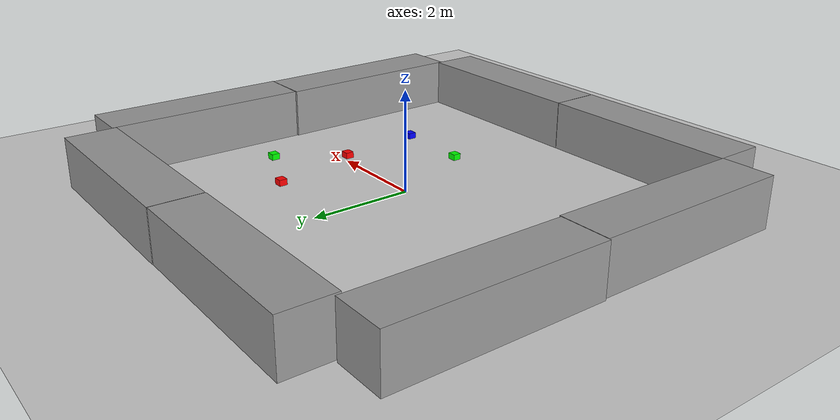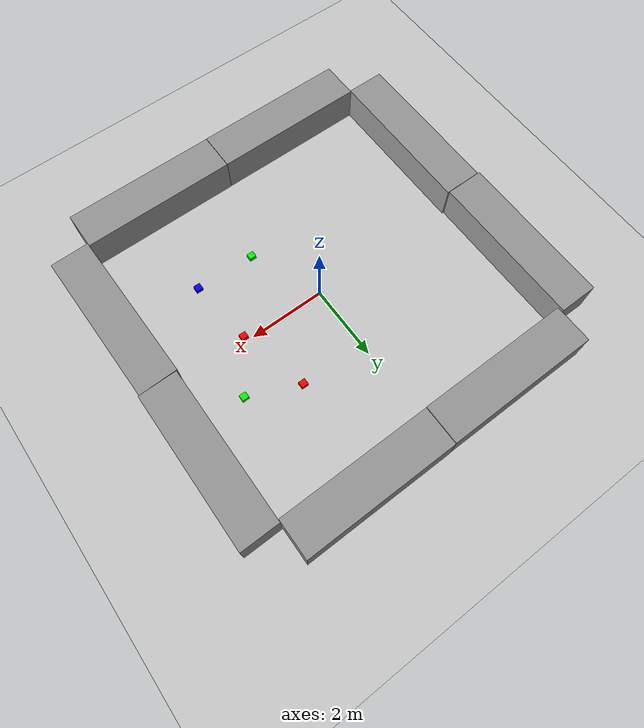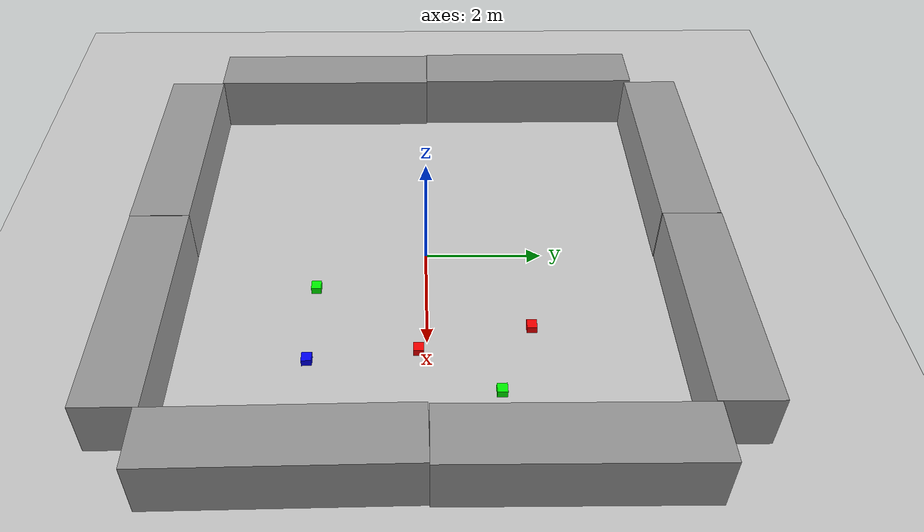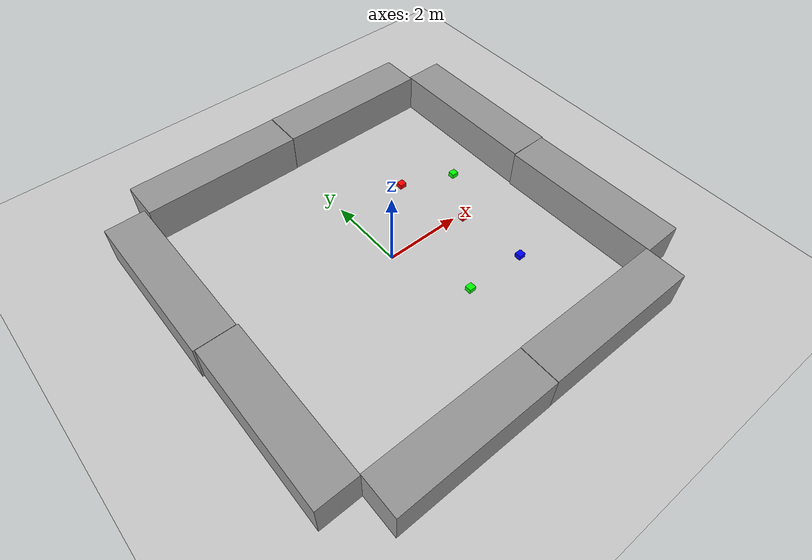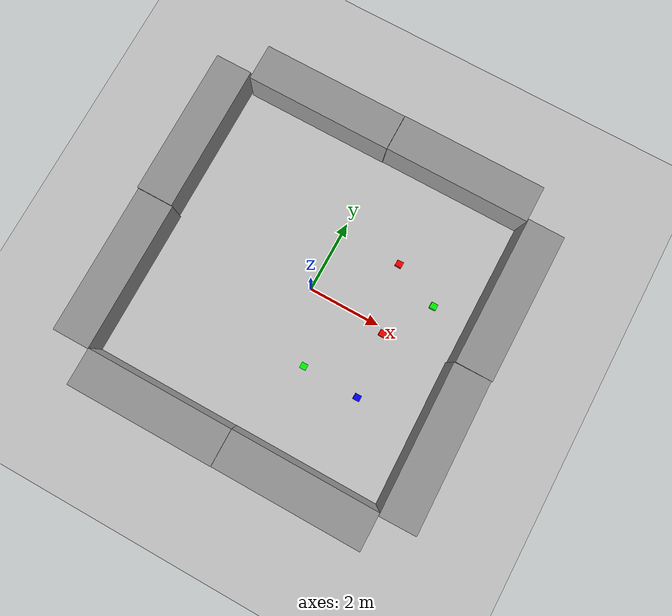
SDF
<sdf version="1.7">
 <world name="default">
  <light name="sun" type="directional">
   <cast_shadows>0</cast_shadows>
   <pose>0 0 10 0 -0 0</pose>
   <diffuse>0.8 0.8 0.8 1</diffuse>
   <specular>0.2 0.2 0.2 1</specular>
   <attenuation>
    <range>1000</range>
    <constant>0.9</constant>
    <linear>0.01</linear>
    <quadratic>0.001</quadratic>
   </attenuation>
   <direction>-0.5 0.1 -0.9</direction>
   <spot><inner_angle>0</inner_angle><outer_angle>0</outer_angle><falloff>0</falloff></spot>
  </light>
  <model name="ground_plane">
   <static>1</static>
   <link name="link">
    <collision name="collision">
     <geometry><plane><normal>0 0 1</normal><size>100 100</size></plane></geometry>
     <surface><friction><ode><mu>100</mu><mu2>50</mu2></ode></friction></surface>
    </collision>
    <visual name="visual">
     <cast_shadows>0</cast_shadows>
     <geometry><plane><normal>0 0 1</normal><size>100 100</size></plane></geometry>
     <material>
      <script><uri>file://media/materials/scripts/gazebo.material</uri><name>Gazebo/Grey</name></script>
     </material>
    </visual>
   </link>
  </model>
  <gravity>0 0 -9.8</gravity>
  <scene><ambient>0.4 0.4 0.4 1</ambient><background>0.7 0.7 0.7 1</background><shadows>1</shadows></scene>
  <magnetic_field>6e-06 2.3e-05 -4.2e-05</magnetic_field>
  <atmosphere type="adiabatic"/>
  <physics type="ode">
   <max_step_size>0.001</max_step_size>
   <real_time_factor>1</real_time_factor>
   <real_time_update_rate>1000</real_time_update_rate>
  </physics>
  <audio><device>default</device></audio>
  <spherical_coordinates>
   <surface_model>EARTH_WGS84</surface_model>
   <latitude_deg>0</latitude_deg>
   <longitude_deg>0</longitude_deg>
   <elevation>0</elevation>
   <heading_deg>0</heading_deg>
  </spherical_coordinates>
  <model name="unit_box">
   <pose>4.50391 -2.02998 0.499998 0 5e-06 0.016025</pose>
   <link name="link">
    <inertial>
     <mass>1</mass>
     <inertia>
      <ixx>0.166667</ixx>
      <ixy>0</ixy>
      <ixz>0</ixz>
      <iyy>0.166667</iyy>
      <iyz>0</iyz>
      <izz>0.166667</izz>
     </inertia>
    </inertial>
    <collision name="collision"><geometry><box><size>1 4.0622 1</size></box></geometry></collision>
    <visual name="visual">
     <geometry><box><size>1 4.0622 1</size></box></geometry>
     <material>
      <script><name>Gazebo/Grey</name><uri>file://media/materials/scripts/gazebo.material</uri></script>
     </material>
    </visual>
   </link>
  </model>
  <model name="unit_box_clone">
   <pose>4.5001 2.0404 0.499196 0.000396 -0 5e-06</pose>
   <link name="link">
    <inertial>
     <mass>1</mass>
     <inertia>
      <ixx>0.166667</ixx>
      <ixy>0</ixy>
      <ixz>0</ixz>
      <iyy>0.166667</iyy>
      <iyz>0</iyz>
      <izz>0.166667</izz>
     </inertia>
    </inertial>
    <collision name="collision"><geometry><box><size>1 4.0622 1</size></box></geometry></collision>
    <visual name="visual">
     <geometry><box><size>1 4.0622 1</size></box></geometry>
     <material>
      <script><name>Gazebo/Grey</name><uri>file://media/materials/scripts/gazebo.material</uri></script>
     </material>
    </visual>
   </link>
  </model>
  <model name="unit_box_0">
   <pose>2.00709 4.49153 0.499283 0 0.000362 1e-05</pose>
   <link name="link">
    <inertial>
     <mass>1</mass>
     <inertia>
      <ixx>0.166667</ixx>
      <ixy>0</ixy>
      <ixz>0</ixz>
      <iyy>0.166667</iyy>
      <iyz>0</iyz>
      <izz>0.166667</izz>
     </inertia>
    </inertial>
    <collision name="collision"><geometry><box><size>3.96686 1 1</size></box></geometry></collision>
    <visual name="visual">
     <geometry><box><size>3.96686 1 1</size></box></geometry>
     <material>
      <script><name>Gazebo/Grey</name><uri>file://media/materials/scripts/gazebo.material</uri></script>
     </material>
    </visual>
   </link>
  </model>
  <model name="unit_box_0_clone">
   <pose>-1.99331 4.48227 0.499239 0 0.000379 4e-06</pose>
   <link name="link">
    <inertial>
     <mass>1</mass>
     <inertia>
      <ixx>0.166667</ixx>
      <ixy>0</ixy>
      <ixz>0</ixz>
      <iyy>0.166667</iyy>
      <iyz>0</iyz>
      <izz>0.166667</izz>
     </inertia>
    </inertial>
    <collision name="collision"><geometry><box><size>4.01582 1 1</size></box></geometry></collision>
    <visual name="visual">
     <geometry><box><size>4.01582 1 1</size></box></geometry>
     <material>
      <script><name>Gazebo/Grey</name><uri>file://media/materials/scripts/gazebo.material</uri></script>
     </material>
    </visual>
   </link>
  </model>
  <model name="unit_box_0_clone_clone">
   <pose>2.02567 -4.48877 0.499239 0 0.000379 -7.3e-05</pose>
   <link name="link">
    <inertial>
     <mass>1</mass>
     <inertia>
      <ixx>0.166667</ixx>
      <ixy>0</ixy>
      <ixz>0</ixz>
      <iyy>0.166667</iyy>
      <iyz>0</iyz>
      <izz>0.166667</izz>
     </inertia>
    </inertial>
    <collision name="collision"><geometry><box><size>4.01582 1 1</size></box></geometry></collision>
    <visual name="visual">
     <geometry><box><size>4.01582 1 1</size></box></geometry>
     <material>
      <script><name>Gazebo/Grey</name><uri>file://media/materials/scripts/gazebo.material</uri></script>
     </material>
    </visual>
   </link>
  </model>
  <model name="unit_box_clone_0">
   <pose>-4.50839 -1.98935 0.499196 -0.000396 0 0.000391</pose>
   <link name="link">
    <inertial>
     <mass>1</mass>
     <inertia>
      <ixx>0.166667</ixx>
      <ixy>0</ixy>
      <ixz>0</ixz>
      <iyy>0.166667</iyy>
      <iyz>0</iyz>
      <izz>0.166667</izz>
     </inertia>
    </inertial>
    <collision name="collision"><geometry><box><size>1 4.0622 1</size></box></geometry></collision>
    <visual name="visual">
     <geometry><box><size>1 4.0622 1</size></box></geometry>
     <material>
      <script><name>Gazebo/Grey</name><uri>file://media/materials/scripts/gazebo.material</uri></script>
     </material>
    </visual>
   </link>
  </model>
  <model name="unit_box_clone_1">
   <pose>-4.54977 2.08272 0.499196 0.000396 -0 7e-05</pose>
   <link name="link">
    <inertial>
     <mass>1</mass>
     <inertia>
      <ixx>0.166667</ixx>
      <ixy>0</ixy>
      <ixz>0</ixz>
      <iyy>0.166667</iyy>
      <iyz>0</iyz>
      <izz>0.166667</izz>
     </inertia>
    </inertial>
    <collision name="collision"><geometry><box><size>1 4.0622 1</size></box></geometry></collision>
    <visual name="visual">
     <geometry><box><size>1 4.0622 1</size></box></geometry>
     <material>
      <script><name>Gazebo/Grey</name><uri>file://media/materials/scripts/gazebo.material</uri></script>
     </material>
    </visual>
   </link>
  </model>
  <model name="unit_box_0_clone_clone_clone">
   <pose>-1.99633 -4.49438 0.499239 0 0.000379 8e-06</pose>
   <link name="link">
    <inertial>
     <mass>1</mass>
     <inertia>
      <ixx>0.166667</ixx>
      <ixy>0</ixy>
      <ixz>0</ixz>
      <iyy>0.166667</iyy>
      <iyz>0</iyz>
      <izz>0.166667</izz>
     </inertia>
    </inertial>
    <collision name="collision"><geometry><box><size>4.01582 1 1</size></box></geometry></collision>
    <visual name="visual">
     <geometry><box><size>4.01582 1 1</size></box></geometry>
     <material>
      <script><name>Gazebo/Grey</name><uri>file://media/materials/scripts/gazebo.material</uri></script>
     </material>
    </visual>
   </link>
  </model>
  <model name="unit_box_1_clone_1_clone_clone_2">
   <link name="link">
    <inertial>
     <mass>1</mass>
     <inertia>
      <ixx>0.166667</ixx>
      <ixy>0</ixy>
      <ixz>0</ixz>
      <iyy>0.166667</iyy>
      <iyz>0</iyz>
      <izz>0.166667</izz>
     </inertia>
    </inertial>
    <visual name="visual">
     <geometry><box><size>0.177426 0.164052 0.124949</size></box></geometry>
     <material>
      <script><name>Gazebo/Grey</name><uri>file://media/materials/scripts/gazebo.material</uri></script>
      <shader type="pixel"><normal_map>__default__</normal_map></shader>
      <ambient>0 1 0 1</ambient>
      <diffuse>0 1 0 1</diffuse>
      <specular>0 1 0 1</specular>
      <emissive>0 1 0 1</emissive>
      <lighting>1</lighting>
     </material>
    </visual>
    <collision name="collision">
     <geometry><box><size>0.177426 0.164052 0.124949</size></box></geometry>
     <surface>
      <friction>
       <ode><mu>1</mu><mu2>1</mu2><fdir1>0 0 0</fdir1><slip1>0</slip1><slip2>0</slip2></ode>
       <torsional>
        <coefficient>1</coefficient>
        <patch_radius>0</patch_radius>
        <surface_radius>0</surface_radius>
        <use_patch_radius>1</use_patch_radius>
        <ode><slip>0</slip></ode>
       </torsional>
      </friction>
      <bounce><restitution_coefficient>0</restitution_coefficient><threshold>1e+06</threshold></bounce>
      <contact>
       <collide_without_contact>0</collide_without_contact>
       <collide_without_contact_bitmask>1</collide_without_contact_bitmask>
       <collide_bitmask>1</collide_bitmask>
       <ode>
        <soft_cfm>0</soft_cfm>
        <soft_erp>0.2</soft_erp>
        <kp>1e+13</kp>
        <kd>1</kd>
        <max_vel>0.01</max_vel>
        <min_depth>0</min_depth>
       </ode>
       <bullet>
        <split_impulse>1</split_impulse>
        <split_impulse_penetration_threshold>-0.01</split_impulse_penetration_threshold>
        <soft_cfm>0</soft_cfm>
        <soft_erp>0.2</soft_erp>
        <kp>1e+13</kp>
        <kd>1</kd>
       </bullet>
      </contact>
     </surface>
    </collision>
   </link>
   <static>0</static>
   <pose>0.799038 -1.85443 0.062474 -3e-06 -3e-06 -6e-06</pose>
  </model>
  <model name="unit_box_1_clone_1_clone_clone_1">
   <link name="link">
    <inertial>
     <mass>1</mass>
     <inertia>
      <ixx>0.166667</ixx>
      <ixy>0</ixy>
      <ixz>0</ixz>
      <iyy>0.166667</iyy>
      <iyz>0</iyz>
      <izz>0.166667</izz>
     </inertia>
    </inertial>
    <visual name="visual">
     <geometry><box><size>0.177426 0.164052 0.124949</size></box></geometry>
     <material>
      <script><name>Gazebo/Grey</name><uri>file://media/materials/scripts/gazebo.material</uri></script>
      <shader type="pixel"><normal_map>__default__</normal_map></shader>
      <ambient>0 0 1 1</ambient>
      <diffuse>0 0 1 1</diffuse>
      <specular>0 0 1 1</specular>
      <emissive>0 0 1 1</emissive>
      <lighting>1</lighting>
     </material>
    </visual>
    <collision name="collision">
     <geometry><box><size>0.177426 0.164052 0.124949</size></box></geometry>
     <surface>
      <friction>
       <ode><mu>1</mu><mu2>1</mu2><fdir1>0 0 0</fdir1><slip1>0</slip1><slip2>0</slip2></ode>
       <torsional>
        <coefficient>1</coefficient>
        <patch_radius>0</patch_radius>
        <surface_radius>0</surface_radius>
        <use_patch_radius>1</use_patch_radius>
        <ode><slip>0</slip></ode>
       </torsional>
      </friction>
      <bounce><restitution_coefficient>0</restitution_coefficient><threshold>1e+06</threshold></bounce>
      <contact>
       <collide_without_contact>0</collide_without_contact>
       <collide_without_contact_bitmask>1</collide_without_contact_bitmask>
       <collide_bitmask>1</collide_bitmask>
       <ode>
        <soft_cfm>0</soft_cfm>
        <soft_erp>0.2</soft_erp>
        <kp>1e+13</kp>
        <kd>1</kd>
        <max_vel>0.01</max_vel>
        <min_depth>0</min_depth>
       </ode>
       <bullet>
        <split_impulse>1</split_impulse>
        <split_impulse_penetration_threshold>-0.01</split_impulse_penetration_threshold>
        <soft_cfm>0</soft_cfm>
        <soft_erp>0.2</soft_erp>
        <kp>1e+13</kp>
        <kd>1</kd>
       </bullet>
      </contact>
     </surface>
    </collision>
   </link>
   <static>0</static>
   <pose>2.38167 -1.89236 0.062474 -2e-06 -3e-06 -6e-06</pose>
  </model>
  <model name="unit_box_1_clone_1_clone">
   <link name="link">
    <inertial>
     <mass>1</mass>
     <inertia>
      <ixx>0.166667</ixx>
      <ixy>0</ixy>
      <ixz>0</ixz>
      <iyy>0.166667</iyy>
      <iyz>0</iyz>
      <izz>0.166667</izz>
     </inertia>
    </inertial>
    <visual name="visual">
     <geometry><box><size>0.177426 0.164052 0.124949</size></box></geometry>
     <material>
      <script><name>Gazebo/Grey</name><uri>file://media/materials/scripts/gazebo.material</uri></script>
      <shader type="pixel"><normal_map>__default__</normal_map></shader>
      <ambient>1 0 0 1</ambient>
      <diffuse>1 0 0 1</diffuse>
      <specular>1 0 0 1</specular>
      <emissive>1 0 0 1</emissive>
      <lighting>1</lighting>
     </material>
    </visual>
    <collision name="collision">
     <geometry><box><size>0.177426 0.164052 0.124949</size></box></geometry>
     <surface>
      <friction>
       <ode><mu>1</mu><mu2>1</mu2><fdir1>0 0 0</fdir1><slip1>0</slip1><slip2>0</slip2></ode>
       <torsional>
        <coefficient>1</coefficient>
        <patch_radius>0</patch_radius>
        <surface_radius>0</surface_radius>
        <use_patch_radius>1</use_patch_radius>
        <ode><slip>0</slip></ode>
       </torsional>
      </friction>
      <bounce><restitution_coefficient>0</restitution_coefficient><threshold>1e+06</threshold></bounce>
      <contact>
       <collide_without_contact>0</collide_without_contact>
       <collide_without_contact_bitmask>1</collide_without_contact_bitmask>
       <collide_bitmask>1</collide_bitmask>
       <ode>
        <soft_cfm>0</soft_cfm>
        <soft_erp>0.2</soft_erp>
        <kp>1e+13</kp>
        <kd>1</kd>
        <max_vel>0.01</max_vel>
        <min_depth>0</min_depth>
       </ode>
       <bullet>
        <split_impulse>1</split_impulse>
        <split_impulse_penetration_threshold>-0.01</split_impulse_penetration_threshold>
        <soft_cfm>0</soft_cfm>
        <soft_erp>0.2</soft_erp>
        <kp>1e+13</kp>
        <kd>1</kd>
       </bullet>
      </contact>
     </surface>
    </collision>
   </link>
   <static>0</static>
   <pose>2.18987 -0.13665 0.062474 -3e-06 -2e-06 -7e-06</pose>
  </model>
  <model name="unit_box_1_clone_1_clone_clone_3">
   <link name="link">
    <inertial>
     <mass>1</mass>
     <inertia>
      <ixx>0.166667</ixx>
      <ixy>0</ixy>
      <ixz>0</ixz>
      <iyy>0.166667</iyy>
      <iyz>0</iyz>
      <izz>0.166667</izz>
     </inertia>
    </inertial>
    <visual name="visual">
     <geometry><box><size>0.177426 0.164052 0.124949</size></box></geometry>
     <material>
      <script><name>Gazebo/Grey</name><uri>file://media/materials/scripts/gazebo.material</uri></script>
      <shader type="pixel"><normal_map>__default__</normal_map></shader>
      <ambient>1 0 0 1</ambient>
      <diffuse>1 0 0 1</diffuse>
      <specular>1 0 0 1</specular>
      <emissive>1 0 0 1</emissive>
      <lighting>1</lighting>
     </material>
    </visual>
    <collision name="collision">
     <geometry><box><size>0.177426 0.164052 0.124949</size></box></geometry>
     <surface>
      <friction>
       <ode><mu>1</mu><mu2>1</mu2><fdir1>0 0 0</fdir1><slip1>0</slip1><slip2>0</slip2></ode>
       <torsional>
        <coefficient>1</coefficient>
        <patch_radius>0</patch_radius>
        <surface_radius>0</surface_radius>
        <use_patch_radius>1</use_patch_radius>
        <ode><slip>0</slip></ode>
       </torsional>
      </friction>
      <bounce><restitution_coefficient>0</restitution_coefficient><threshold>1e+06</threshold></bounce>
      <contact>
       <collide_without_contact>0</collide_without_contact>
       <collide_without_contact_bitmask>1</collide_without_contact_bitmask>
       <collide_bitmask>1</collide_bitmask>
       <ode>
        <soft_cfm>0</soft_cfm>
        <soft_erp>0.2</soft_erp>
        <kp>1e+13</kp>
        <kd>1</kd>
        <max_vel>0.01</max_vel>
        <min_depth>0</min_depth>
       </ode>
       <bullet>
        <split_impulse>1</split_impulse>
        <split_impulse_penetration_threshold>-0.01</split_impulse_penetration_threshold>
        <soft_cfm>0</soft_cfm>
        <soft_erp>0.2</soft_erp>
        <kp>1e+13</kp>
        <kd>1</kd>
       </bullet>
      </contact>
     </surface>
    </collision>
   </link>
   <static>0</static>
   <pose>1.72057 1.69546 0.062474 4e-06 -1e-06 1e-06</pose>
  </model>
  <model name="unit_box_1_clone_1_clone_clone_2_clone">
   <link name="link">
    <inertial>
     <mass>1</mass>
     <inertia>
      <ixx>0.166667</ixx>
      <ixy>0</ixy>
      <ixz>0</ixz>
      <iyy>0.166667</iyy>
      <iyz>0</iyz>
      <izz>0.166667</izz>
     </inertia>
    </inertial>
    <visual name="visual">
     <geometry><box><size>0.177426 0.164052 0.124949</size></box></geometry>
     <material>
      <script><name>Gazebo/Grey</name><uri>file://media/materials/scripts/gazebo.material</uri></script>
      <shader type="pixel"><normal_map>__default__</normal_map></shader>
      <ambient>0 1 0 1</ambient>
      <diffuse>0 1 0 1</diffuse>
      <specular>0 1 0 1</specular>
      <emissive>0 1 0 1</emissive>
      <lighting>1</lighting>
     </material>
    </visual>
    <collision name="collision">
     <geometry><box><size>0.177426 0.164052 0.124949</size></box></geometry>
     <surface>
      <friction>
       <ode><mu>1</mu><mu2>1</mu2><fdir1>0 0 0</fdir1><slip1>0</slip1><slip2>0</slip2></ode>
       <torsional>
        <coefficient>1</coefficient>
        <patch_radius>0</patch_radius>
        <surface_radius>0</surface_radius>
        <use_patch_radius>1</use_patch_radius>
        <ode><slip>0</slip></ode>
       </torsional>
      </friction>
      <bounce><restitution_coefficient>0</restitution_coefficient><threshold>1e+06</threshold></bounce>
      <contact>
       <collide_without_contact>0</collide_without_contact>
       <collide_without_contact_bitmask>1</collide_without_contact_bitmask>
       <collide_bitmask>1</collide_bitmask>
       <ode>
        <soft_cfm>0</soft_cfm>
        <soft_erp>0.2</soft_erp>
        <kp>1e+13</kp>
        <kd>1</kd>
        <max_vel>0.01</max_vel>
        <min_depth>0</min_depth>
       </ode>
       <bullet>
        <split_impulse>1</split_impulse>
        <split_impulse_penetration_threshold>-0.01</split_impulse_penetration_threshold>
        <soft_cfm>0</soft_cfm>
        <soft_erp>0.2</soft_erp>
        <kp>1e+13</kp>
        <kd>1</kd>
       </bullet>
      </contact>
     </surface>
    </collision>
   </link>
   <static>0</static>
   <pose>3.02558 1.13311 0.062474 3e-06 -3e-06 -1.3e-05</pose>
  </model>
 </world>
</sdf>
